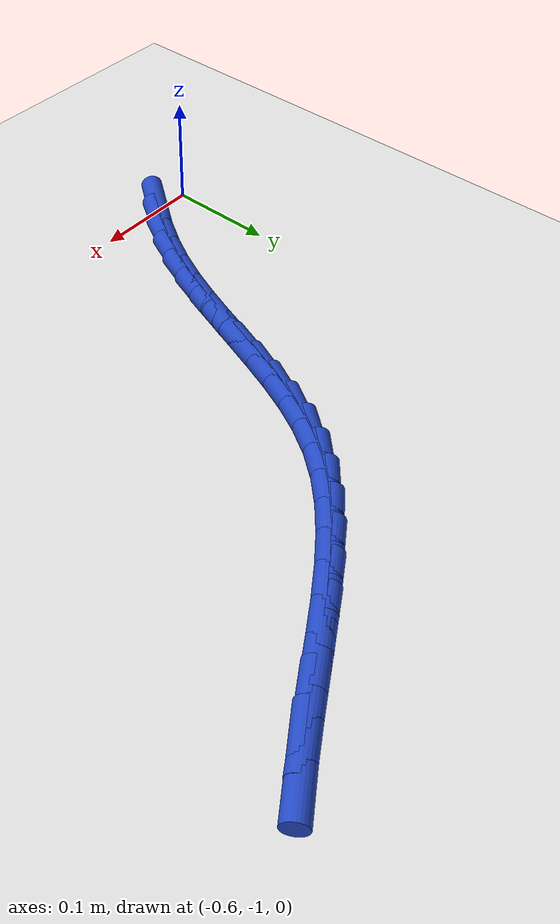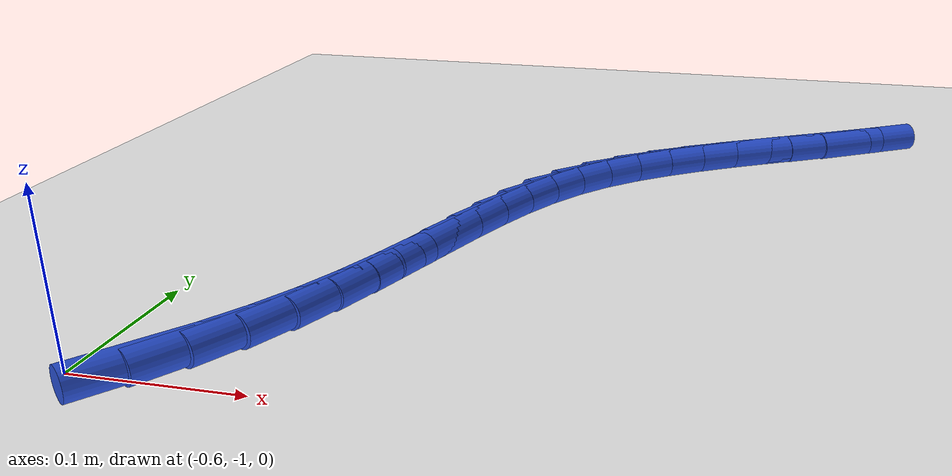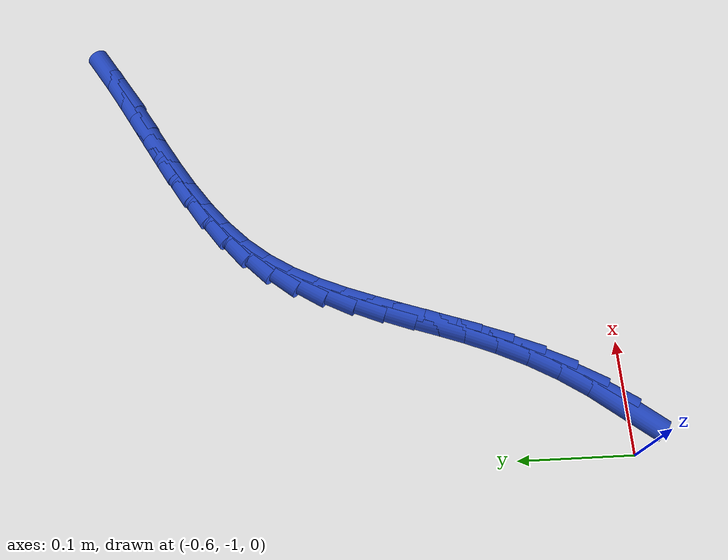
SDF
<sdf version="1.6">
 <world name="default">
  <model name="ground_plane">
   <static>1</static>
   <link name="link">
    <collision name="collision">
     <geometry><plane><normal>0 0 1</normal><size>100 100</size></plane></geometry>
     <surface><friction><ode><mu>100</mu><mu2>50</mu2></ode></friction></surface>
    </collision>
    <visual name="visual">
     <cast_shadows>0</cast_shadows>
     <geometry><plane><normal>0 0 1</normal><size>100 100</size></plane></geometry>
     <material>
      <script><uri>file://media/materials/scripts/gazebo.material</uri><name>Gazebo/WhiteGlow</name></script>
     </material>
    </visual>
   </link>
  </model>
  <model name="line">
   <link name="link_217">
    <pose>-0.5586328145306603 -0.9937700064528373 0.01 0 1.57 0.9139117529987999</pose>
    <collision name="collision">
     <geometry><cylinder><radius>0.01</radius><length>0.08</length></cylinder></geometry>
    </collision>
    <visual name="visual">
     <material>
      <script><name>Gazebo/Blue</name><uri>file://media/materials/scripts/gazebo.material</uri></script>
     </material>
     <geometry><cylinder><radius>0.01</radius><length>0.08</length></cylinder></geometry>
    </visual>
   </link>
   <link name="link_218">
    <pose>-0.5410044495955008 -0.9709094253067002 0.01 0 1.57 0.9914328358914609</pose>
    <collision name="collision">
     <geometry><cylinder><radius>0.01</radius><length>0.08</length></cylinder></geometry>
    </collision>
    <visual name="visual">
     <material>
      <script><name>Gazebo/Blue</name><uri>file://media/materials/scripts/gazebo.material</uri></script>
     </material>
     <geometry><cylinder><radius>0.01</radius><length>0.08</length></cylinder></geometry>
    </visual>
   </link>
   <link name="link_219">
    <pose>-0.5250732200042569 -0.9465593939628532 0.01 0 1.57 1.065451466656844</pose>
    <collision name="collision">
     <geometry><cylinder><radius>0.01</radius><length>0.08</length></cylinder></geometry>
    </collision>
    <visual name="visual">
     <material>
      <script><name>Gazebo/Blue</name><uri>file://media/materials/scripts/gazebo.material</uri></script>
     </material>
     <geometry><cylinder><radius>0.01</radius><length>0.08</length></cylinder></geometry>
    </visual>
   </link>
   <link name="link_220">
    <pose>-0.5109641140660226 -0.9210577633953341 0.01 0 1.57 1.1361742730646451</pose>
    <collision name="collision">
     <geometry><cylinder><radius>0.01</radius><length>0.08</length></cylinder></geometry>
    </collision>
    <visual name="visual">
     <material>
      <script><name>Gazebo/Blue</name><uri>file://media/materials/scripts/gazebo.material</uri></script>
     </material>
     <geometry><cylinder><radius>0.01</radius><length>0.08</length></cylinder></geometry>
    </visual>
   </link>
   <link name="link_221">
    <pose>-0.49874601233756877 -0.8947385333851609 0.01 0 1.57 1.1926110719699863</pose>
    <collision name="collision">
     <geometry><cylinder><radius>0.01</radius><length>0.08</length></cylinder></geometry>
    </collision>
    <visual name="visual">
     <material>
      <script><name>Gazebo/Blue</name><uri>file://media/materials/scripts/gazebo.material</uri></script>
     </material>
     <geometry><cylinder><radius>0.01</radius><length>0.08</length></cylinder></geometry>
    </visual>
   </link>
   <link name="link_222">
    <pose>-0.48808602358626246 -0.8679081264063323 0.01 0 1.57 1.229406042229548</pose>
    <collision name="collision">
     <geometry><cylinder><radius>0.01</radius><length>0.08</length></cylinder></geometry>
    </collision>
    <visual name="visual">
     <material>
      <script><name>Gazebo/Blue</name><uri>file://media/materials/scripts/gazebo.material</uri></script>
     </material>
     <geometry><cylinder><radius>0.01</radius><length>0.08</length></cylinder></geometry>
    </visual>
   </link>
   <link name="link_223">
    <pose>-0.47847610790279355 -0.8408609428622148 0.01 0 1.57 1.2464205001772741</pose>
    <collision name="collision">
     <geometry><cylinder><radius>0.01</radius><length>0.08</length></cylinder></geometry>
    </collision>
    <visual name="visual">
     <material>
      <script><name>Gazebo/Blue</name><uri>file://media/materials/scripts/gazebo.material</uri></script>
     </material>
     <geometry><cylinder><radius>0.01</radius><length>0.08</length></cylinder></geometry>
    </visual>
   </link>
   <link name="link_224">
    <pose>-0.46940749945564536 -0.8138913333294318 0.01 0 1.57 1.2432986643468296</pose>
    <collision name="collision">
     <geometry><cylinder><radius>0.01</radius><length>0.08</length></cylinder></geometry>
    </collision>
    <visual name="visual">
     <material>
      <script><name>Gazebo/Blue</name><uri>file://media/materials/scripts/gazebo.material</uri></script>
     </material>
     <geometry><cylinder><radius>0.01</radius><length>0.08</length></cylinder></geometry>
    </visual>
   </link>
   <link name="link_225">
    <pose>-0.46037143241330153 -0.7872936483846076 0.01 0 1.57 1.2192119003077555</pose>
    <collision name="collision">
     <geometry><cylinder><radius>0.01</radius><length>0.08</length></cylinder></geometry>
    </collision>
    <visual name="visual">
     <material>
      <script><name>Gazebo/Blue</name><uri>file://media/materials/scripts/gazebo.material</uri></script>
     </material>
     <geometry><cylinder><radius>0.01</radius><length>0.08</length></cylinder></geometry>
    </visual>
   </link>
   <link name="link_226">
    <pose>-0.4508591409442454 -0.7613622386043659 0.01 0 1.57 1.1728431975316462</pose>
    <collision name="collision">
     <geometry><cylinder><radius>0.01</radius><length>0.08</length></cylinder></geometry>
    </collision>
    <visual name="visual">
     <material>
      <script><name>Gazebo/Blue</name><uri>file://media/materials/scripts/gazebo.material</uri></script>
     </material>
     <geometry><cylinder><radius>0.01</radius><length>0.08</length></cylinder></geometry>
    </visual>
   </link>
   <link name="link_227">
    <pose>-0.4403618592169605 -0.7363914545653304 0.01 0 1.57 1.1026678318663323</pose>
    <collision name="collision">
     <geometry><cylinder><radius>0.01</radius><length>0.08</length></cylinder></geometry>
    </collision>
    <visual name="visual">
     <material>
      <script><name>Gazebo/Blue</name><uri>file://media/materials/scripts/gazebo.material</uri></script>
     </material>
     <geometry><cylinder><radius>0.01</radius><length>0.08</length></cylinder></geometry>
    </visual>
   </link>
   <link name="link_228">
    <pose>-0.4283708213999302 -0.7126756468441249 0.01 0 1.57 1.0076839997401175</pose>
    <collision name="collision">
     <geometry><cylinder><radius>0.01</radius><length>0.08</length></cylinder></geometry>
    </collision>
    <visual name="visual">
     <material>
      <script><name>Gazebo/Blue</name><uri>file://media/materials/scripts/gazebo.material</uri></script>
     </material>
     <geometry><cylinder><radius>0.01</radius><length>0.08</length></cylinder></geometry>
    </visual>
   </link>
   <link name="link_229">
    <pose>-0.41437726166163763 -0.6905091660173729 0.01 0 1.57 0.8915319704269185</pose>
    <collision name="collision">
     <geometry><cylinder><radius>0.01</radius><length>0.08</length></cylinder></geometry>
    </collision>
    <visual name="visual">
     <material>
      <script><name>Gazebo/Blue</name><uri>file://media/materials/scripts/gazebo.material</uri></script>
     </material>
     <geometry><cylinder><radius>0.01</radius><length>0.08</length></cylinder></geometry>
    </visual>
   </link>
   <link name="link_230">
    <pose>-0.39793473136738156 -0.6701455223087386 0.01 0 1.57 0.7818644446536964</pose>
    <collision name="collision">
     <geometry><cylinder><radius>0.01</radius><length>0.08</length></cylinder></geometry>
    </collision>
    <visual name="visual">
     <material>
      <script><name>Gazebo/Blue</name><uri>file://media/materials/scripts/gazebo.material</uri></script>
     </material>
     <geometry><cylinder><radius>0.01</radius><length>0.08</length></cylinder></geometry>
    </visual>
   </link>
   <link name="link_231">
    <pose>-0.3791394338600186 -0.6514825921933988 0.01 0 1.57 0.6929525738632545</pose>
    <collision name="collision">
     <geometry><cylinder><radius>0.01</radius><length>0.08</length></cylinder></geometry>
    </collision>
    <visual name="visual">
     <material>
      <script><name>Gazebo/Blue</name><uri>file://media/materials/scripts/gazebo.material</uri></script>
     </material>
     <geometry><cylinder><radius>0.01</radius><length>0.08</length></cylinder></geometry>
    </visual>
   </link>
   <link name="link_232">
    <pose>-0.3583670914316126 -0.6342350659133837 0.01 0 1.57 0.6243637277528985</pose>
    <collision name="collision">
     <geometry><cylinder><radius>0.01</radius><length>0.08</length></cylinder></geometry>
    </collision>
    <visual name="visual">
     <material>
      <script><name>Gazebo/Blue</name><uri>file://media/materials/scripts/gazebo.material</uri></script>
     </material>
     <geometry><cylinder><radius>0.01</radius><length>0.08</length></cylinder></geometry>
    </visual>
   </link>
   <link name="link_233">
    <pose>-0.3359957397600574 -0.6181161176044366 0.01 0 1.57 0.5746505538839332</pose>
    <collision name="collision">
     <geometry><cylinder><radius>0.01</radius><length>0.08</length></cylinder></geometry>
    </collision>
    <visual name="visual">
     <material>
      <script><name>Gazebo/Blue</name><uri>file://media/materials/scripts/gazebo.material</uri></script>
     </material>
     <geometry><cylinder><radius>0.01</radius><length>0.08</length></cylinder></geometry>
    </visual>
   </link>
   <link name="link_234">
    <pose>-0.31240341452324705 -0.6028389214023012 0.01 0 1.57 0.5422564266887164</pose>
    <collision name="collision">
     <geometry><cylinder><radius>0.01</radius><length>0.08</length></cylinder></geometry>
    </collision>
    <visual name="visual">
     <material>
      <script><name>Gazebo/Blue</name><uri>file://media/materials/scripts/gazebo.material</uri></script>
     </material>
     <geometry><cylinder><radius>0.01</radius><length>0.08</length></cylinder></geometry>
    </visual>
   </link>
   <link name="link_235">
    <pose>-0.28796815139907556 -0.5881166514427205 0.01 0 1.57 0.525946545572369</pose>
    <collision name="collision">
     <geometry><cylinder><radius>0.01</radius><length>0.08</length></cylinder></geometry>
    </collision>
    <visual name="visual">
     <material>
      <script><name>Gazebo/Blue</name><uri>file://media/materials/scripts/gazebo.material</uri></script>
     </material>
     <geometry><cylinder><radius>0.01</radius><length>0.08</length></cylinder></geometry>
    </visual>
   </link>
   <link name="link_236">
    <pose>-0.26306798606543624 -0.5736624818614382 0.01 0 1.57 0.5249971355760226</pose>
    <collision name="collision">
     <geometry><cylinder><radius>0.01</radius><length>0.08</length></cylinder></geometry>
    </collision>
    <visual name="visual">
     <material>
      <script><name>Gazebo/Blue</name><uri>file://media/materials/scripts/gazebo.material</uri></script>
     </material>
     <geometry><cylinder><radius>0.01</radius><length>0.08</length></cylinder></geometry>
    </visual>
   </link>
   <link name="link_237">
    <pose>-0.23808095420022457 -0.5591895867941983 0.01 0 1.57 0.5392553827287709</pose>
    <collision name="collision">
     <geometry><cylinder><radius>0.01</radius><length>0.08</length></cylinder></geometry>
    </collision>
    <visual name="visual">
     <material>
      <script><name>Gazebo/Blue</name><uri>file://media/materials/scripts/gazebo.material</uri></script>
     </material>
     <geometry><cylinder><radius>0.01</radius><length>0.08</length></cylinder></geometry>
    </visual>
   </link>
   <link name="link_238">
    <pose>-0.2133850914813338 -0.5444111403767437 0.01 0 1.57 0.5691290007110009</pose>
    <collision name="collision">
     <geometry><cylinder><radius>0.01</radius><length>0.08</length></cylinder></geometry>
    </collision>
    <visual name="visual">
     <material>
      <script><name>Gazebo/Blue</name><uri>file://media/materials/scripts/gazebo.material</uri></script>
     </material>
     <geometry><cylinder><radius>0.01</radius><length>0.08</length></cylinder></geometry>
    </visual>
   </link>
  </model>
 </world>
</sdf>
